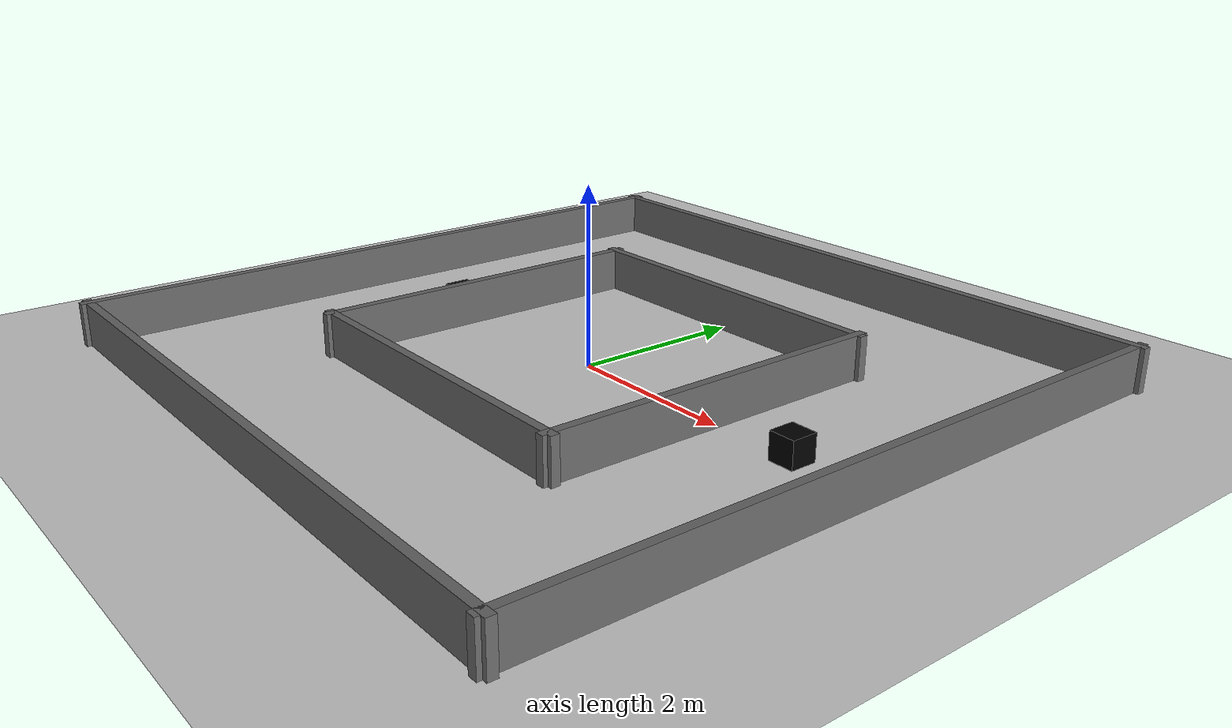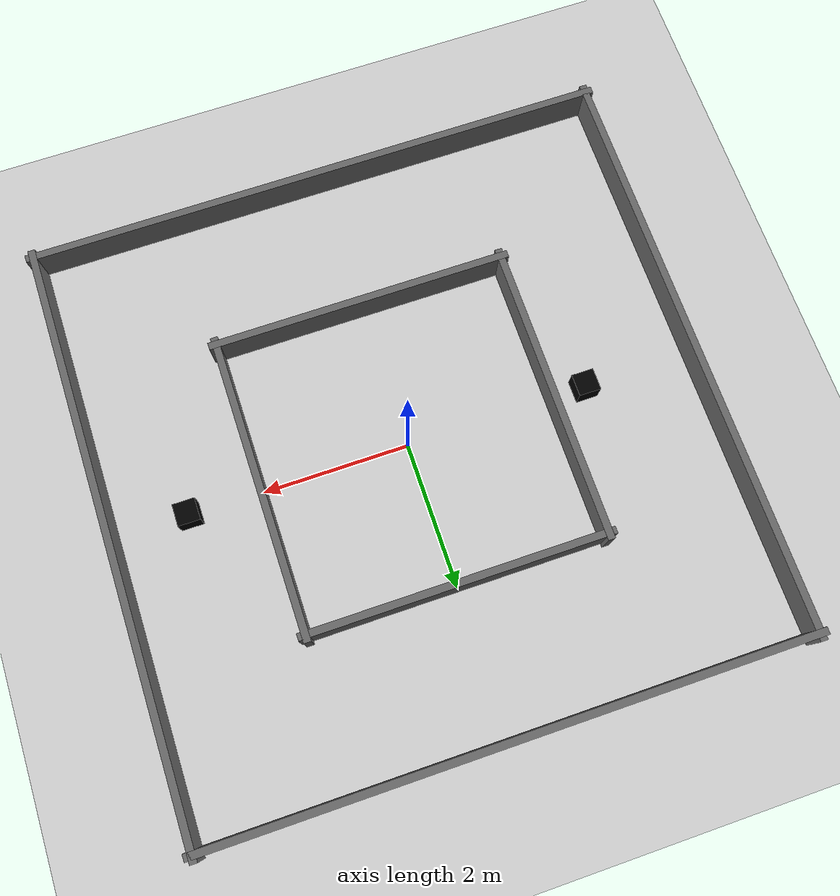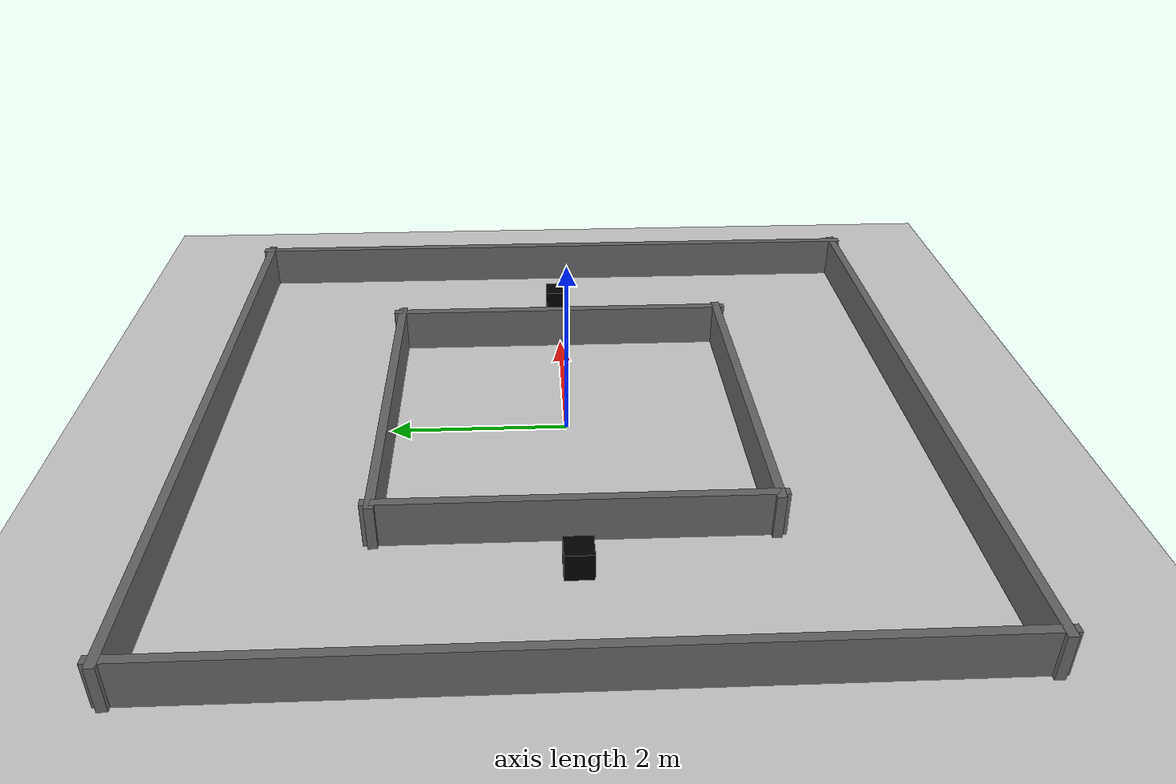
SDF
<?xml version="1.0"?>
<sdf version="1.6">
  <world name="default">

    <!-- Ground plane -->
    <include>
      <uri>model://ground_plane</uri>
    </include>

    <!-- Lighting -->
    <include>
      <uri>model://sun</uri>
    </include>

    <scene>
      <shadows>false</shadows>
    </scene>

    <!-- Plugin to enable set_entity_state service for moving models -->
    <plugin name="gazebo_ros_state" filename="libgazebo_ros_state.so">
      <ros>
        <namespace>/gazebo</namespace>
      </ros>
      <update_rate>50.0</update_rate>
    </plugin>

    <gui fullscreen="0">
      <camera name="user_camera">
        <pose frame="">0.0 0.0 12.0 0 1.57 0</pose>
        <view_controller>orbit</view_controller>
        <projection_type>perspective</projection_type>
      </camera>
    </gui>

    <physics type="ode">
      <real_time_update_rate>1000.0</real_time_update_rate>
      <max_step_size>0.001</max_step_size>
      <real_time_factor>1</real_time_factor>
      <ode>
        <solver>
          <type>quick</type>
          <iters>150</iters>
          <precon_iters>0</precon_iters>
          <sor>1.400000</sor>
          <use_dynamic_moi_rescaling>1</use_dynamic_moi_rescaling>
        </solver>
        <constraints>
          <cfm>0.00001</cfm>
          <erp>0.2</erp>
          <contact_max_correcting_vel>2000.000000</contact_max_correcting_vel>
          <contact_surface_layer>0.01000</contact_surface_layer>
        </constraints>
      </ode>
    </physics>

    <!--
    SIMPLE SQUARE LOOP CORRIDOR:
    - Outer square: 8m x 8m
    - Inner square: 6m x 6m
    - Corridor width: 2m (comfortable for TurtleBot3)
    - 8 walls total: 4 outer + 4 inner
    -->

    <!-- ========== OUTER WALLS (8m x 8m) ========== -->

    <!-- Outer South Wall -->
    <model name="outer_south">
      <static>true</static>
      <pose>0 -4 0.25 0 0 0</pose>
      <link name="link">
        <collision name="collision">
          <geometry><box><size>8.2 0.1 0.5</size></box></geometry>
        </collision>
        <visual name="visual">
          <geometry><box><size>8.2 0.1 0.5</size></box></geometry>
          <material><ambient>0.3 0.3 0.3 1</ambient><diffuse>0.4 0.4 0.4 1</diffuse></material>
        </visual>
      </link>
    </model>

    <!-- Outer North Wall -->
    <model name="outer_north">
      <static>true</static>
      <pose>0 4 0.25 0 0 0</pose>
      <link name="link">
        <collision name="collision">
          <geometry><box><size>8.2 0.1 0.5</size></box></geometry>
        </collision>
        <visual name="visual">
          <geometry><box><size>8.2 0.1 0.5</size></box></geometry>
          <material><ambient>0.3 0.3 0.3 1</ambient><diffuse>0.4 0.4 0.4 1</diffuse></material>
        </visual>
      </link>
    </model>

    <!-- Outer West Wall -->
    <model name="outer_west">
      <static>true</static>
      <pose>-4 0 0.25 0 0 1.5708</pose>
      <link name="link">
        <collision name="collision">
          <geometry><box><size>8.2 0.1 0.5</size></box></geometry>
        </collision>
        <visual name="visual">
          <geometry><box><size>8.2 0.1 0.5</size></box></geometry>
          <material><ambient>0.3 0.3 0.3 1</ambient><diffuse>0.4 0.4 0.4 1</diffuse></material>
        </visual>
      </link>
    </model>

    <!-- Outer East Wall -->
    <model name="outer_east">
      <static>true</static>
      <pose>4 0 0.25 0 0 1.5708</pose>
      <link name="link">
        <collision name="collision">
          <geometry><box><size>8.2 0.1 0.5</size></box></geometry>
        </collision>
        <visual name="visual">
          <geometry><box><size>8.2 0.1 0.5</size></box></geometry>
          <material><ambient>0.3 0.3 0.3 1</ambient><diffuse>0.4 0.4 0.4 1</diffuse></material>
        </visual>
      </link>
    </model>

    <!-- ========== INNER WALLS (6m x 6m) ========== -->

    <!-- Inner South Wall -->
    <model name="inner_south">
      <static>true</static>
      <pose>0 -2 0.25 0 0 0</pose>
      <link name="link">
        <collision name="collision">
          <geometry><box><size>4.2 0.1 0.5</size></box></geometry>
        </collision>
        <visual name="visual">
          <geometry><box><size>4.2 0.1 0.5</size></box></geometry>
          <material><ambient>0.3 0.3 0.3 1</ambient><diffuse>0.4 0.4 0.4 1</diffuse></material>
        </visual>
      </link>
    </model>

    <!-- Inner North Wall -->
    <model name="inner_north">
      <static>true</static>
      <pose>0 2 0.25 0 0 0</pose>
      <link name="link">
        <collision name="collision">
          <geometry><box><size>4.2 0.1 0.5</size></box></geometry>
        </collision>
        <visual name="visual">
          <geometry><box><size>4.2 0.1 0.5</size></box></geometry>
          <material><ambient>0.3 0.3 0.3 1</ambient><diffuse>0.4 0.4 0.4 1</diffuse></material>
        </visual>
      </link>
    </model>

    <!-- Inner West Wall -->
    <model name="inner_west">
      <static>true</static>
      <pose>-2 0 0.25 0 0 1.5708</pose>
      <link name="link">
        <collision name="collision">
          <geometry><box><size>4.2 0.1 0.5</size></box></geometry>
        </collision>
        <visual name="visual">
          <geometry><box><size>4.2 0.1 0.5</size></box></geometry>
          <material><ambient>0.3 0.3 0.3 1</ambient><diffuse>0.4 0.4 0.4 1</diffuse></material>
        </visual>
      </link>
    </model>

    <!-- Inner East Wall -->
    <model name="inner_east">
      <static>true</static>
      <pose>2 0 0.25 0 0 1.5708</pose>
      <link name="link">
        <collision name="collision">
          <geometry><box><size>4.2 0.1 0.5</size></box></geometry>
        </collision>
        <visual name="visual">
          <geometry><box><size>4.2 0.1 0.5</size></box></geometry>
          <material><ambient>0.3 0.3 0.3 1</ambient><diffuse>0.4 0.4 0.4 1</diffuse></material>
        </visual>
      </link>
    </model>

    <!-- ========== STATIC OBSTACLES ========== -->

    <!-- Static black cube obstacle 1 - West side of corridor (moved away from spawn) -->
    <model name="obstacle_box_1">
      <static>true</static>
      <pose>-2.5 0.0 0.15 0 0 0</pose>
      <link name="link">
        <collision name="collision">
          <geometry><box><size>0.3 0.3 0.3</size></box></geometry>
        </collision>
        <visual name="visual">
          <geometry><box><size>0.3 0.3 0.3</size></box></geometry>
          <material>
            <ambient>0 0 0 1</ambient>
            <diffuse>0 0 0 1</diffuse>
          </material>
        </visual>
      </link>
    </model>

    <!-- Static black cube obstacle 2 - North side of corridor -->
    <model name="obstacle_box_2">
      <static>true</static>
      <pose>3.0 0.0 0.15 0 0 0</pose>
      <link name="link">
        <collision name="collision">
          <geometry><box><size>0.3 0.3 0.3</size></box></geometry>
        </collision>
        <visual name="visual">
          <geometry><box><size>0.3 0.3 0.3</size></box></geometry>
          <material>
            <ambient>0 0 0 1</ambient>
            <diffuse>0 0 0 1</diffuse>
          </material>
        </visual>
      </link>
    </model>

  </world>
</sdf>
